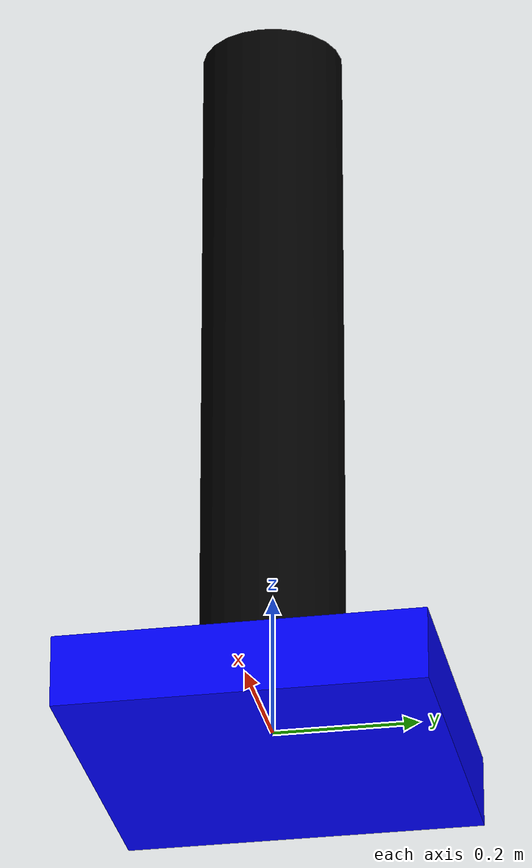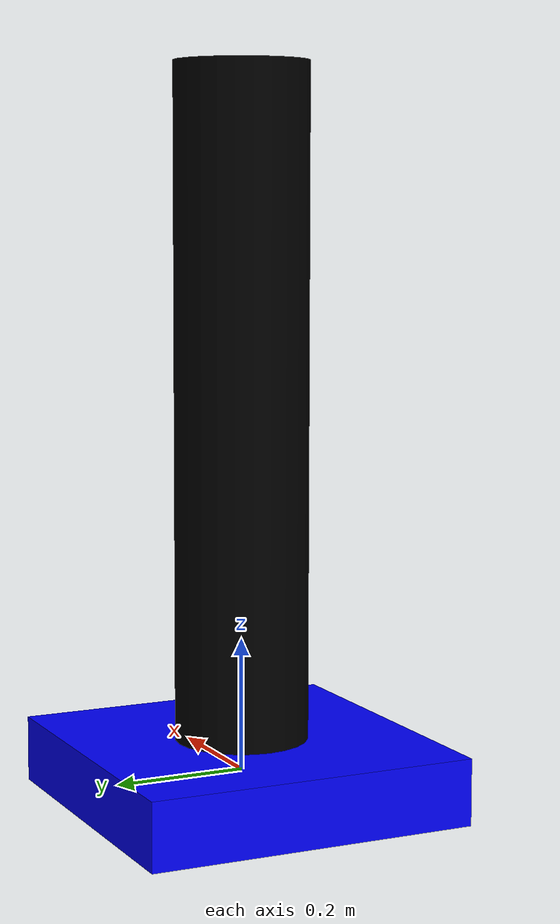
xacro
<?xml version="1.0"?>
<robot xmlns:xacro="http://www.ros.org/wiki/xacro" name="my_robot">
    <xacro:property name="robot_namespace" value="robot"/>
    <xacro:property name="robot_description" value="$(arg robot_description)"/>

    <!-- Define materials -->
    <material name="black">
        <color rgba="0 0 0 1"/>
    </material>
    <material name="blue">
        <color rgba="0 0 1 1"/>
    </material>

    <!-- Define links -->
    <link name="base_link">
        <visual>
            <geometry>
                <box size="0.5 0.5 0.1"/>
            </geometry>
            <material name="blue"/>
        </visual>
    </link>

    <link name="link1">
        <visual>
            <geometry>
                <cylinder length="1.0" radius="0.1"/>
            </geometry>
            <material name="black"/>
        </visual>
    </link>

    <!-- Define joints -->
    <joint name="joint1" type="revolute">
        <parent link="base_link"/>
        <child link="link1"/>
        <origin xyz="0 0 0.55" rpy="0 0 0"/>
        <axis xyz="0 0 1"/>
        <limit effort="100" velocity="1.0" lower="-1.57" upper="1.57"/>
    </joint>

    <!-- ROS2 Control -->
    <ros2_control name="motor_arduino" type="system">
        <hardware>
            <plugin>Juanjo</plugin>
        </hardware>
        <joint name="joint1">
            <command_interface name="position"/>
            <state_interface name="position"/>
            <state_interface name="velocity"/>
        </joint>
    </ros2_control>

</robot>
